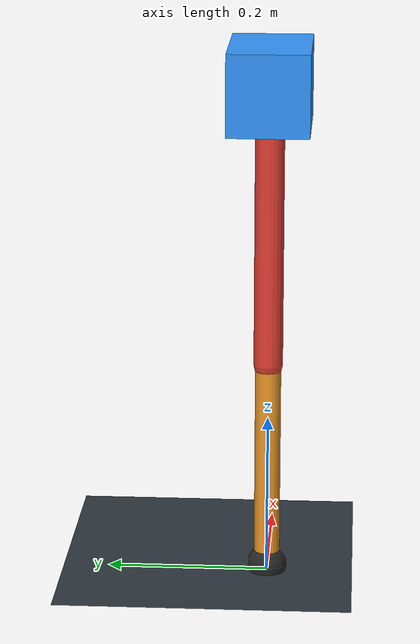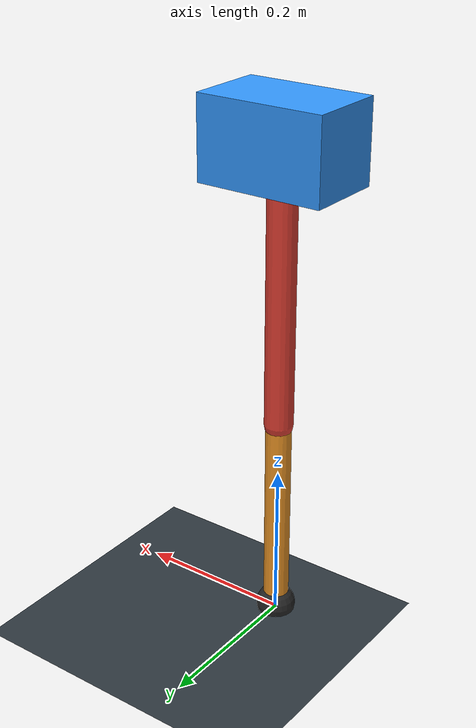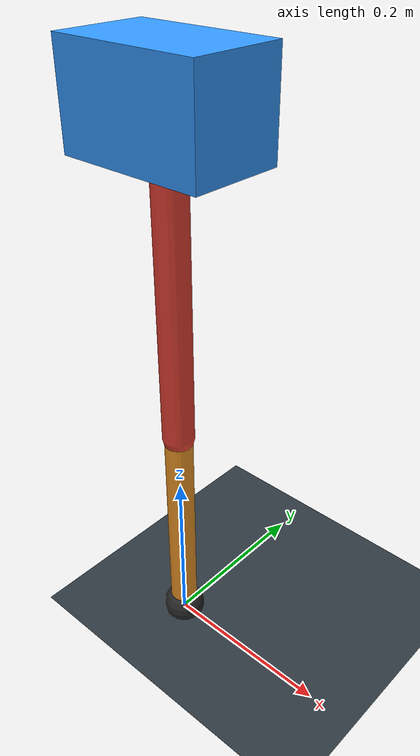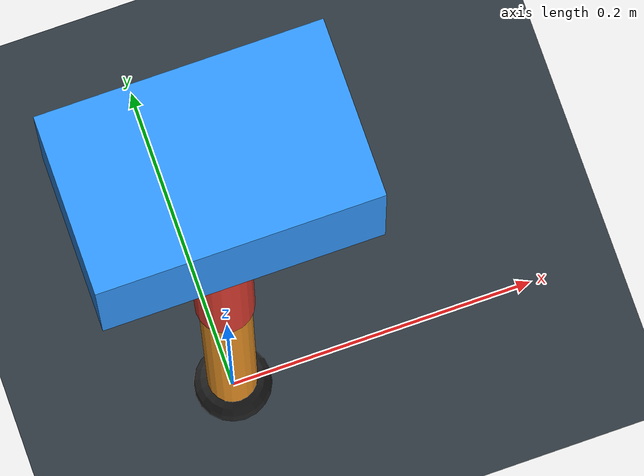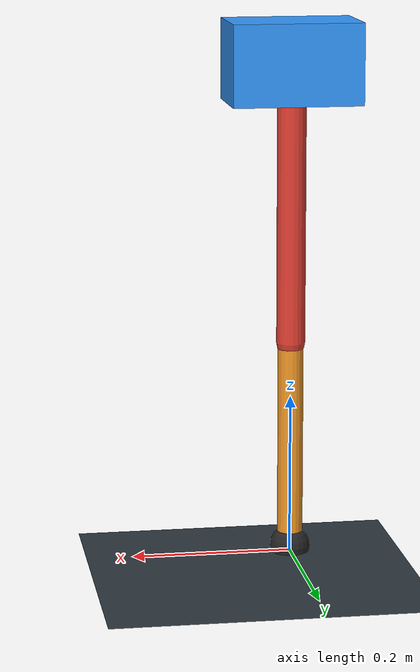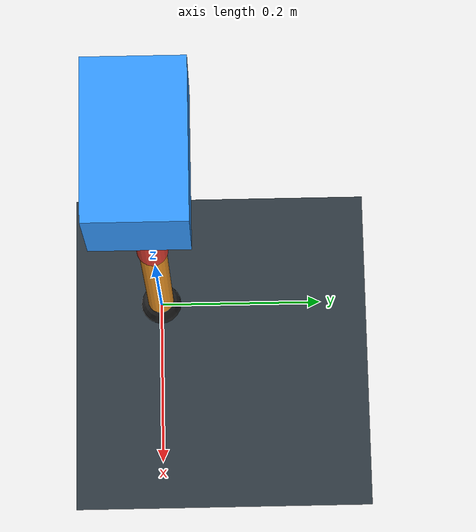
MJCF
<mujoco model="single_axis_two_bar">
  <compiler angle="radian" inertiafromgeom="true"/>
  <option timestep="0.001" integrator="implicitfast" gravity="0 0 -9.81"/>
  <default>
    <joint damping="0.08"/>
    <geom friction="1.2 0.01 0.0001" condim="3"/>
  </default>
  <worldbody>
    <geom name="floor" type="plane" size="5 5 0.1" rgba="0.18 0.22 0.25 1"/>
    <body name="carriage" pos="0 0 0.6192706573114347">
      <joint name="pole_slide" type="slide" axis="0 0 1"/>
      <geom name="payload" type="box" size="0.08 0.05 0.05" mass="3.1155818120141827" rgba="0.2 0.6 1 1"/>
      <body name="thigh" pos="0 0 0">
        <joint name="hip" type="hinge" axis="0 1 0"/>
        <geom name="thigh_link" type="capsule" fromto="0 0 0 0 0 -0.3499970925277134" size="0.018" mass="0.2493775532295347" rgba="0.9 0.25 0.2 1"/>
        <body name="shank" pos="0 0 -0.3499970925277134">
          <joint name="knee" type="hinge" axis="0 1 0"/>
          <geom name="shank_link" type="capsule" fromto="0 0 0 0 0 -0.2626530696490234" size="0.016" mass="0.18714378277903446" rgba="0.95 0.6 0.15 1"/>
          <geom name="foot" type="sphere" pos="0 0 -0.2626530696490234" size="0.025" mass="0.03" rgba="0.15 0.15 0.15 1"/>
          <site name="toe" pos="0 0 -0.2626530696490234" size="0.008"/>
        </body>
      </body>
    </body>
  </worldbody>
  <actuator>
    <motor name="hip_motor" joint="hip" ctrlrange="-34.368845230441494 34.368845230441494"/>
    <motor name="knee_motor" joint="knee" ctrlrange="-159.2077350258658 159.2077350258658"/>
  </actuator>
</mujoco>
